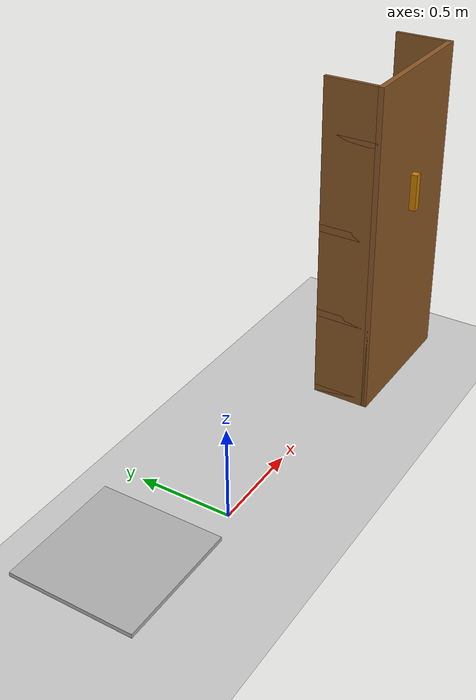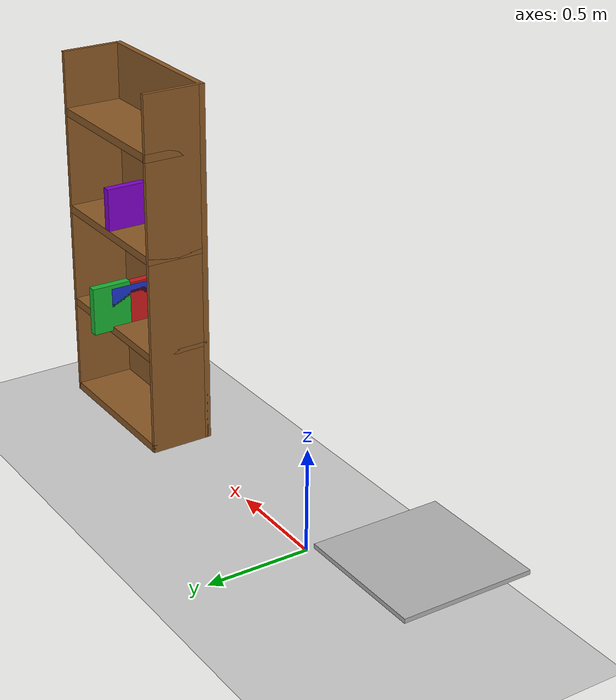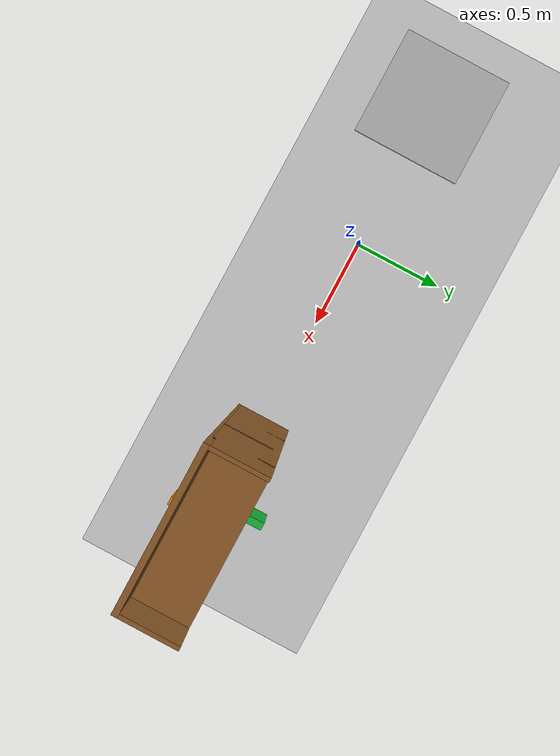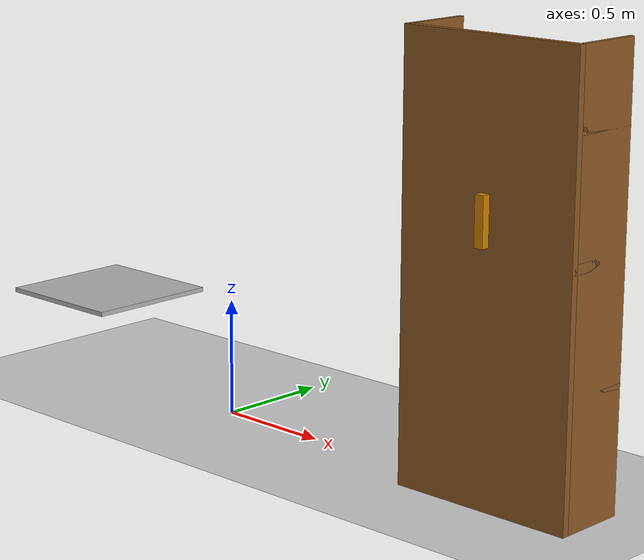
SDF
<?xml version="1.0" ?>
<sdf version="1.9">
  <world name="bookshelf_world">

    <!-- Shadows and grid to manage resources, faster gaz sim -->

    <!-- Fisica -->
    <physics name="default_physics" default="true" type="ode">
      <max_step_size>0.004</max_step_size>  <!-- 0.001 to 0.004 to manage resources, faster gaz sim -->
      <real_time_factor>1.0</real_time_factor>
      <real_time_update_rate>250</real_time_update_rate>  <!-- to manage resources, faster gaz sim -->
    </physics>

    <!-- Plugin fisico Gazebo Harmonic -->
    <plugin filename="gz-sim-physics-system" name="gz::sim::systems::Physics"/>
    <plugin filename="gz-sim-user-commands-system" name="gz::sim::systems::UserCommands"/>
    <plugin filename="gz-sim-scene-broadcaster-system" name="gz::sim::systems::SceneBroadcaster"/>
    <plugin filename="gz-sim-sensors-system" name="gz::sim::systems::Sensors">
      <render_engine>ogre2</render_engine>
    </plugin>

    <!-- Luce solare (sostituisce model://sun) -->
    <light name="sun" type="directional">
      <cast_shadows>true</cast_shadows>  <!-- Light shadows off to manage resources, faster gaz sim -->
      <pose>0 0 10 0 0 0</pose>
      <diffuse>0.8 0.8 0.8 1</diffuse>
      <specular>0.2 0.2 0.2 1</specular>
      <direction>-0.5 0.1 -0.9</direction>
    </light>

    <!-- Piano terra (sostituisce model://ground_plane) -->
    <model name="ground_plane">
      <static>true</static>
      <link name="link">
        <collision name="collision">
          <geometry>
            <plane>
              <normal>0 0 1</normal>
              <size>100 100</size>
            </plane>
          </geometry>
        </collision>
        <visual name="visual">
          <geometry>
            <plane>
              <normal>0 0 1</normal>
              <size>100 100</size>
            </plane>
          </geometry>
          <material>
            <ambient>0.8 0.8 0.8 1</ambient>
            <diffuse>0.8 0.8 0.8 1</diffuse>
          </material>
        </visual>
      </link>
    </model>

    <!-- ===== LIBRERIA ===== -->
    <model name="bookshelf">
      <static>true</static>
      <pose>1.5 0 0 0 0 0</pose>

      <link name="back_panel">
        <pose>0 -0.15 0.9 0 0 0</pose>
        <visual name="v">
          <geometry><box><size>0.8 0.03 1.8</size></box></geometry>
          <material><ambient>0.55 0.35 0.15 1</ambient><diffuse>0.55 0.35 0.15 1</diffuse></material>
        </visual>
        <collision name="c">
          <geometry><box><size>0.8 0.03 1.8</size></box></geometry>
        </collision>
      </link>

      <link name="left_panel">
        <pose>-0.39 0 0.9 0 0 0</pose>
        <visual name="v">
          <geometry><box><size>0.02 0.3 1.8</size></box></geometry>
          <material><ambient>0.55 0.35 0.15 1</ambient><diffuse>0.55 0.35 0.15 1</diffuse></material>
        </visual>
        <collision name="c">
          <geometry><box><size>0.02 0.3 1.8</size></box></geometry>
        </collision>
      </link>

      <link name="right_panel">
        <pose>0.39 0 0.9 0 0 0</pose>
        <visual name="v">
          <geometry><box><size>0.02 0.3 1.8</size></box></geometry>
          <material><ambient>0.55 0.35 0.15 1</ambient><diffuse>0.55 0.35 0.15 1</diffuse></material>
        </visual>
        <collision name="c">
          <geometry><box><size>0.02 0.3 1.8</size></box></geometry>
        </collision>
      </link>

      <link name="shelf_0">
        <pose>0 0 0.02 0 0 0</pose>
        <visual name="v"><geometry><box><size>0.8 0.3 0.04</size></box></geometry>
          <material><ambient>0.55 0.35 0.15 1</ambient><diffuse>0.55 0.35 0.15 1</diffuse></material></visual>
        <collision name="c"><geometry><box><size>0.8 0.3 0.04</size></box></geometry></collision>
      </link>

      <link name="shelf_1">
        <pose>0 0 0.5 0 0 0</pose>
        <visual name="v"><geometry><box><size>0.8 0.3 0.04</size></box></geometry>
          <material><ambient>0.55 0.35 0.15 1</ambient><diffuse>0.55 0.35 0.15 1</diffuse></material></visual>
        <collision name="c"><geometry><box><size>0.8 0.3 0.04</size></box></geometry></collision>
      </link>

      <link name="shelf_2">
        <pose>0 0 1.0 0 0 0</pose>
        <visual name="v"><geometry><box><size>0.8 0.3 0.04</size></box></geometry>
          <material><ambient>0.55 0.35 0.15 1</ambient><diffuse>0.55 0.35 0.15 1</diffuse></material></visual>
        <collision name="c"><geometry><box><size>0.8 0.3 0.04</size></box></geometry></collision>
      </link>

      <link name="shelf_3">
        <pose>0 0 1.5 0 0 0</pose>
        <visual name="v"><geometry><box><size>0.8 0.3 0.04</size></box></geometry>
          <material><ambient>0.55 0.35 0.15 1</ambient><diffuse>0.55 0.35 0.15 1</diffuse></material></visual>
        <collision name="c"><geometry><box><size>0.8 0.3 0.04</size></box></geometry></collision>
      </link>
    </model>

    <!-- ===== LIBRI ripiano 1 ===== -->
    <model name="book_1">
      <pose>1.5 -0.05 0.62 0 0 0</pose>
      <link name="link">
        <visual name="v">
          <geometry><box><size>0.04 0.2 0.22</size></box></geometry>
          <material><ambient>0.8 0.1 0.1 1</ambient><diffuse>0.8 0.1 0.1 1</diffuse></material>
        </visual>
        <collision name="c"><geometry><box><size>0.04 0.2 0.22</size></box></geometry></collision>
        <inertial><mass>0.35</mass>
          <inertia><ixx>0.003</ixx><ixy>0</ixy><ixz>0</ixz><iyy>0.0005</iyy><iyz>0</iyz><izz>0.003</izz></inertia>
        </inertial>
      </link>
    </model>

    <model name="book_2">
      <pose>1.5 0.05 0.62 0 0 0</pose>
      <link name="link">
        <visual name="v">
          <geometry><box><size>0.04 0.2 0.20</size></box></geometry>
          <material><ambient>0.1 0.2 0.8 1</ambient><diffuse>0.1 0.2 0.8 1</diffuse></material>
        </visual>
        <collision name="c"><geometry><box><size>0.04 0.2 0.20</size></box></geometry></collision>
        <inertial><mass>0.30</mass>
          <inertia><ixx>0.002</ixx><ixy>0</ixy><ixz>0</ixz><iyy>0.0004</iyy><iyz>0</iyz><izz>0.002</izz></inertia>
        </inertial>
      </link>
    </model>

    <model name="book_3">
      <pose>1.5 0.15 0.62 0 0 0</pose>
      <link name="link">
        <visual name="v">
          <geometry><box><size>0.04 0.2 0.24</size></box></geometry>
          <material><ambient>0.1 0.7 0.2 1</ambient><diffuse>0.1 0.7 0.2 1</diffuse></material>
        </visual>
        <collision name="c"><geometry><box><size>0.04 0.2 0.24</size></box></geometry></collision>
        <inertial><mass>0.40</mass>
          <inertia><ixx>0.003</ixx><ixy>0</ixy><ixz>0</ixz><iyy>0.0006</iyy><iyz>0</iyz><izz>0.003</izz></inertia>
        </inertial>
      </link>
    </model>

    <!-- ===== LIBRI ripiano 2 ===== -->
    <model name="book_4">
      <pose>1.5 -0.1 1.12 0 0 0</pose>
      <link name="link">
        <visual name="v">
          <geometry><box><size>0.04 0.2 0.20</size></box></geometry>
          <material><ambient>0.8 0.5 0.0 1</ambient><diffuse>0.8 0.5 0.0 1</diffuse></material>
        </visual>
        <collision name="c"><geometry><box><size>0.04 0.2 0.20</size></box></geometry></collision>
        <inertial><mass>0.30</mass>
          <inertia><ixx>0.002</ixx><ixy>0</ixy><ixz>0</ixz><iyy>0.0004</iyy><iyz>0</iyz><izz>0.002</izz></inertia>
        </inertial>
      </link>
    </model>

    <model name="book_5">
      <pose>1.5 0.05 1.12 0 0 0</pose>
      <link name="link">
        <visual name="v">
          <geometry><box><size>0.04 0.2 0.22</size></box></geometry>
          <material><ambient>0.5 0.0 0.8 1</ambient><diffuse>0.5 0.0 0.8 1</diffuse></material>
        </visual>
        <collision name="c"><geometry><box><size>0.04 0.2 0.22</size></box></geometry></collision>
        <inertial><mass>0.35</mass>
          <inertia><ixx>0.003</ixx><ixy>0</ixy><ixz>0</ixz><iyy>0.0005</iyy><iyz>0</iyz><izz>0.003</izz></inertia>
        </inertial>
      </link>
    </model>

    <!-- ===== TAVOLO deposito ===== -->
    <model name="deposit_table">
      <static>true</static>
      <pose>-0.8 0 0 0 0 0</pose>
      <link name="link">
        <pose>0 0 0.4 0 0 0</pose>
        <visual name="v">
          <geometry><box><size>0.6 0.6 0.02</size></box></geometry>
          <material><ambient>0.7 0.7 0.7 1</ambient><diffuse>0.7 0.7 0.7 1</diffuse></material>
        </visual>
        <collision name="c"><geometry><box><size>0.6 0.6 0.02</size></box></geometry></collision>
      </link>
    </model>

  </world>
</sdf>
